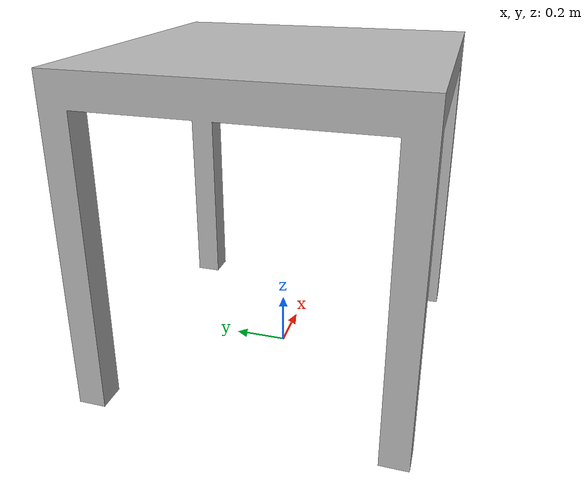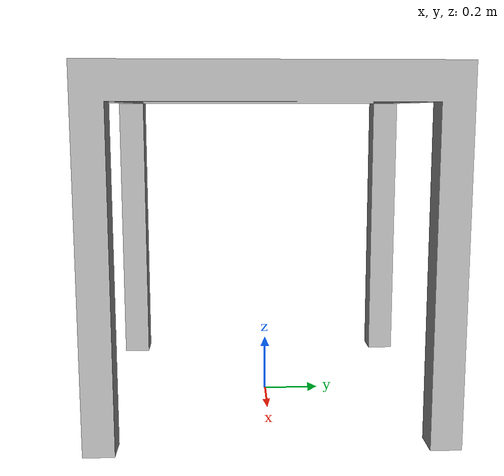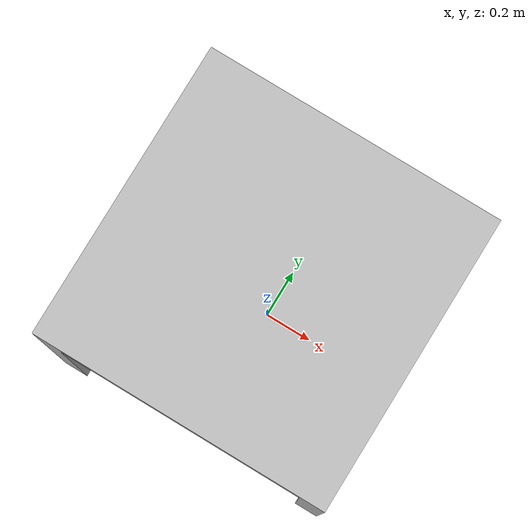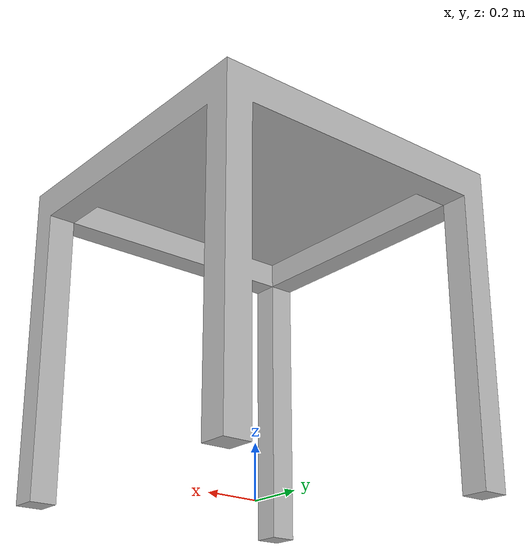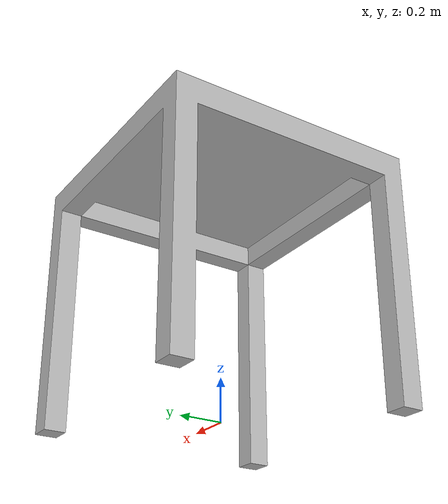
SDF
<?xml version="1.0" ?>
<sdf version="1.3">
  <model name="nist_elevated_floor_120">
    <static>true</static>
    <link name="nist_elevated_floor_120">
      <pose>0 0 0.0 0 0 0</pose>
      <collision name="collision">
        <geometry>
          <mesh>
            <uri>model://nist_elevated_floor_120/meshes/nist_elevated_floor_120.dae</uri>
            <scale>1 1 1</scale>
          </mesh>
        </geometry>
      </collision>
      <visual name="visual">
        <geometry>
          <mesh>
            <uri>model://nist_elevated_floor_120/meshes/nist_elevated_floor_120.dae</uri>
            <scale>1 1 1</scale>
          </mesh>
        </geometry>
      </visual>
    </link>
  </model>
</sdf>
